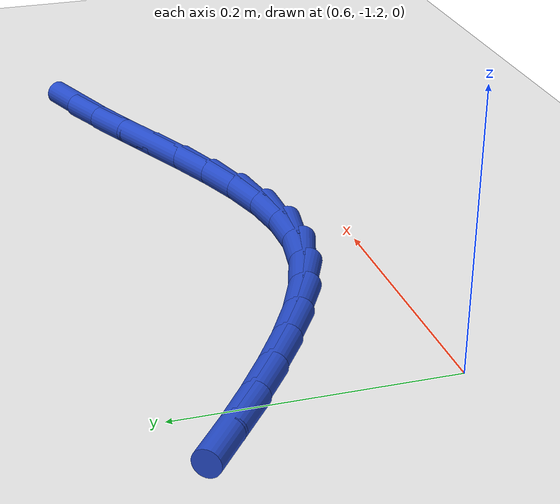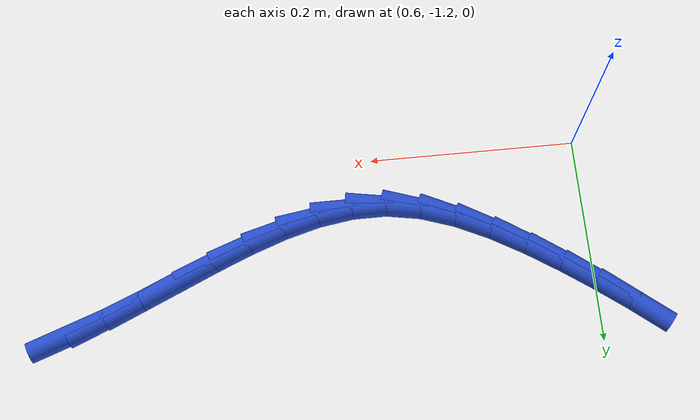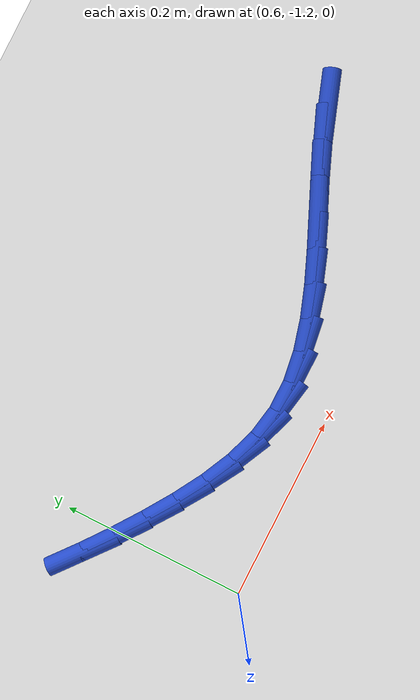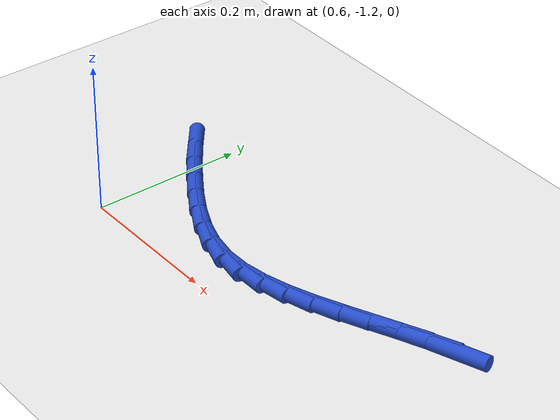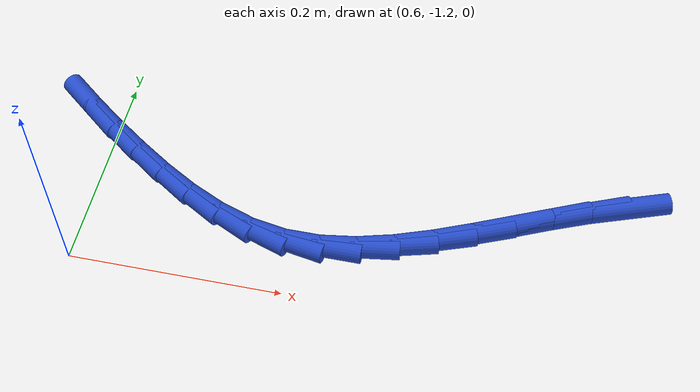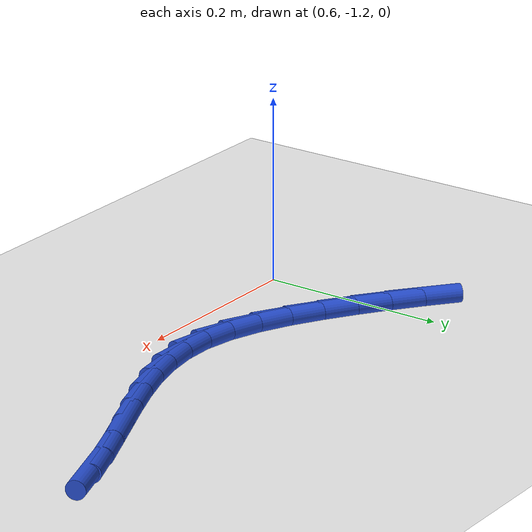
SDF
<sdf version="1.6">
 <world name="default">
  <model name="ground_plane">
   <static>1</static>
   <link name="link">
    <collision name="collision">
     <geometry><plane><normal>0 0 1</normal><size>100 100</size></plane></geometry>
     <surface><friction><ode><mu>100</mu><mu2>50</mu2></ode></friction></surface>
    </collision>
    <visual name="visual">
     <cast_shadows>0</cast_shadows>
     <geometry><plane><normal>0 0 1</normal><size>100 100</size></plane></geometry>
     <material>
      <script><uri>file://media/materials/scripts/gazebo.material</uri><name>Gazebo/WhiteGlow</name></script>
     </material>
    </visual>
   </link>
  </model>
  <model name="line">
   <link name="link_150">
    <pose>1.0960018198372645 -1.0513879435909024 0.01 0 1.57 0.3420399078513117</pose>
    <collision name="collision">
     <geometry><cylinder><radius>0.01</radius><length>0.08</length></cylinder></geometry>
    </collision>
    <visual name="visual">
     <material>
      <script><name>Gazebo/Blue</name><uri>file://media/materials/scripts/gazebo.material</uri></script>
     </material>
     <geometry><cylinder><radius>0.01</radius><length>0.08</length></cylinder></geometry>
    </visual>
   </link>
   <link name="link_151">
    <pose>1.0611817414904836 -1.0637850649071456 0.01 0 1.57 0.39316345730770214</pose>
    <collision name="collision">
     <geometry><cylinder><radius>0.01</radius><length>0.08</length></cylinder></geometry>
    </collision>
    <visual name="visual">
     <material>
      <script><name>Gazebo/Blue</name><uri>file://media/materials/scripts/gazebo.material</uri></script>
     </material>
     <geometry><cylinder><radius>0.01</radius><length>0.08</length></cylinder></geometry>
    </visual>
   </link>
   <link name="link_152">
    <pose>1.0266048738057907 -1.078126087607266 0.01 0 1.57 0.4186774970989824</pose>
    <collision name="collision">
     <geometry><cylinder><radius>0.01</radius><length>0.08</length></cylinder></geometry>
    </collision>
    <visual name="visual">
     <material>
      <script><name>Gazebo/Blue</name><uri>file://media/materials/scripts/gazebo.material</uri></script>
     </material>
     <geometry><cylinder><radius>0.01</radius><length>0.08</length></cylinder></geometry>
    </visual>
   </link>
   <link name="link_153">
    <pose>0.9922529813324165 -1.093412241286775 0.01 0 1.57 0.4196147870807264</pose>
    <collision name="collision">
     <geometry><cylinder><radius>0.01</radius><length>0.08</length></cylinder></geometry>
    </collision>
    <visual name="visual">
     <material>
      <script><name>Gazebo/Blue</name><uri>file://media/materials/scripts/gazebo.material</uri></script>
     </material>
     <geometry><cylinder><radius>0.01</radius><length>0.08</length></cylinder></geometry>
    </visual>
   </link>
   <link name="link_154">
    <pose>0.9581078286195923 -1.108644755541184 0.01 0 1.57 0.39558130901482824</pose>
    <collision name="collision">
     <geometry><cylinder><radius>0.01</radius><length>0.08</length></cylinder></geometry>
    </collision>
    <visual name="visual">
     <material>
      <script><name>Gazebo/Blue</name><uri>file://media/materials/scripts/gazebo.material</uri></script>
     </material>
     <geometry><cylinder><radius>0.01</radius><length>0.08</length></cylinder></geometry>
    </visual>
   </link>
   <link name="link_155">
    <pose>0.9241511802165489 -1.1228248599660033 0.01 0 1.57 0.34465990731759544</pose>
    <collision name="collision">
     <geometry><cylinder><radius>0.01</radius><length>0.08</length></cylinder></geometry>
    </collision>
    <visual name="visual">
     <material>
      <script><name>Gazebo/Blue</name><uri>file://media/materials/scripts/gazebo.material</uri></script>
     </material>
     <geometry><cylinder><radius>0.01</radius><length>0.08</length></cylinder></geometry>
    </visual>
   </link>
   <link name="link_156">
    <pose>0.8903648006725172 -1.1349537841567445 0.01 0 1.57 0.26364809989532967</pose>
    <collision name="collision">
     <geometry><cylinder><radius>0.01</radius><length>0.08</length></cylinder></geometry>
    </collision>
    <visual name="visual">
     <material>
      <script><name>Gazebo/Blue</name><uri>file://media/materials/scripts/gazebo.material</uri></script>
     </material>
     <geometry><cylinder><radius>0.01</radius><length>0.08</length></cylinder></geometry>
    </visual>
   </link>
   <link name="link_157">
    <pose>0.8567304545367282 -1.1440327577089184 0.01 0 1.57 0.1490408823443608</pose>
    <collision name="collision">
     <geometry><cylinder><radius>0.01</radius><length>0.08</length></cylinder></geometry>
    </collision>
    <visual name="visual">
     <material>
      <script><name>Gazebo/Blue</name><uri>file://media/materials/scripts/gazebo.material</uri></script>
     </material>
     <geometry><cylinder><radius>0.01</radius><length>0.08</length></cylinder></geometry>
    </visual>
   </link>
   <link name="link_158">
    <pose>0.8232299063584131 -1.1490630102180364 0.01 0 1.57 -0.0005163679584767963</pose>
    <collision name="collision">
     <geometry><cylinder><radius>0.01</radius><length>0.08</length></cylinder></geometry>
    </collision>
    <visual name="visual">
     <material>
      <script><name>Gazebo/Blue</name><uri>file://media/materials/scripts/gazebo.material</uri></script>
     </material>
     <geometry><cylinder><radius>0.01</radius><length>0.08</length></cylinder></geometry>
    </visual>
   </link>
   <link name="link_159">
    <pose>0.7898449206868025 -1.1490457712796092 0.01 0 1.57 -0.17596956446805842</pose>
    <collision name="collision">
     <geometry><cylinder><radius>0.01</radius><length>0.08</length></cylinder></geometry>
    </collision>
    <visual name="visual">
     <material>
      <script><name>Gazebo/Blue</name><uri>file://media/materials/scripts/gazebo.material</uri></script>
     </material>
     <geometry><cylinder><radius>0.01</radius><length>0.08</length></cylinder></geometry>
    </visual>
   </link>
   <link name="link_160">
    <pose>0.7565718219692963 -1.143129526076845 0.01 0 1.57 -0.3305301946864524</pose>
    <collision name="collision">
     <geometry><cylinder><radius>0.01</radius><length>0.08</length></cylinder></geometry>
    </collision>
    <visual name="visual">
     <material>
      <script><name>Gazebo/Blue</name><uri>file://media/materials/scripts/gazebo.material</uri></script>
     </material>
     <geometry><cylinder><radius>0.01</radius><length>0.08</length></cylinder></geometry>
    </visual>
   </link>
   <link name="link_161">
    <pose>0.7235386879908354 -1.131795283889305 0.01 0 1.57 -0.4454564047449388</pose>
    <collision name="collision">
     <geometry><cylinder><radius>0.01</radius><length>0.08</length></cylinder></geometry>
    </collision>
    <visual name="visual">
     <material>
      <script><name>Gazebo/Blue</name><uri>file://media/materials/scripts/gazebo.material</uri></script>
     </material>
     <geometry><cylinder><radius>0.01</radius><length>0.08</length></cylinder></geometry>
    </visual>
   </link>
   <link name="link_162">
    <pose>0.6909436275859206 -1.116232332532593 0.01 0 1.57 -0.5269886859388654</pose>
    <collision name="collision">
     <geometry><cylinder><radius>0.01</radius><length>0.08</length></cylinder></geometry>
    </collision>
    <visual name="visual">
     <material>
      <script><name>Gazebo/Blue</name><uri>file://media/materials/scripts/gazebo.material</uri></script>
     </material>
     <geometry><cylinder><radius>0.01</radius><length>0.08</length></cylinder></geometry>
    </visual>
   </link>
   <link name="link_163">
    <pose>0.6589853970743341 -1.0976365083451445 0.01 0 1.57 -0.580960188923075</pose>
    <collision name="collision">
     <geometry><cylinder><radius>0.01</radius><length>0.08</length></cylinder></geometry>
    </collision>
    <visual name="visual">
     <material>
      <script><name>Gazebo/Blue</name><uri>file://media/materials/scripts/gazebo.material</uri></script>
     </material>
     <geometry><cylinder><radius>0.01</radius><length>0.08</length></cylinder></geometry>
    </visual>
   </link>
   <link name="link_164">
    <pose>0.6278626454148329 -1.077203125339962 0.01 0 1.57 -0.6164309151731793</pose>
    <collision name="collision">
     <geometry><cylinder><radius>0.01</radius><length>0.08</length></cylinder></geometry>
    </collision>
    <visual name="visual">
     <material>
      <script><name>Gazebo/Blue</name><uri>file://media/materials/scripts/gazebo.material</uri></script>
     </material>
     <geometry><cylinder><radius>0.01</radius><length>0.08</length></cylinder></geometry>
    </visual>
   </link>
   <link name="link_165">
    <pose>0.5977155117226033 -1.0558428394844093 0.01 0 1.57 -0.648778568491411</pose>
    <collision name="collision">
     <geometry><cylinder><radius>0.01</radius><length>0.08</length></cylinder></geometry>
    </collision>
    <visual name="visual">
     <material>
      <script><name>Gazebo/Blue</name><uri>file://media/materials/scripts/gazebo.material</uri></script>
     </material>
     <geometry><cylinder><radius>0.01</radius><length>0.08</length></cylinder></geometry>
    </visual>
   </link>
   <link name="link_166">
    <pose>0.5685289440091769 -1.0337112817180971 0.01 0 1.57 -0.6802769190752085</pose>
    <collision name="collision">
     <geometry><cylinder><radius>0.01</radius><length>0.08</length></cylinder></geometry>
    </collision>
    <visual name="visual">
     <material>
      <script><name>Gazebo/Blue</name><uri>file://media/materials/scripts/gazebo.material</uri></script>
     </material>
     <geometry><cylinder><radius>0.01</radius><length>0.08</length></cylinder></geometry>
    </visual>
   </link>
  </model>
 </world>
</sdf>
